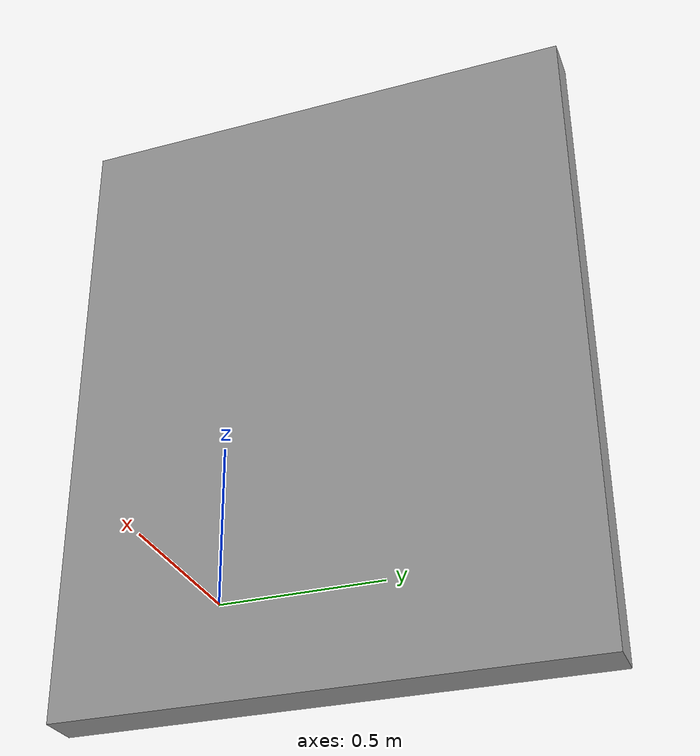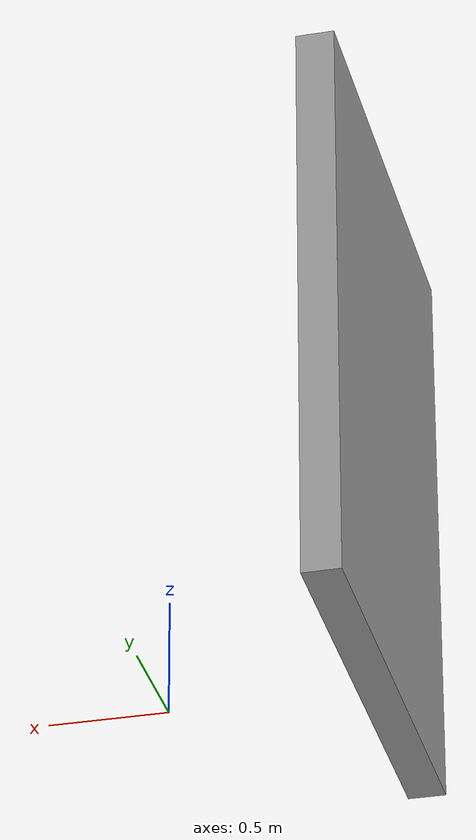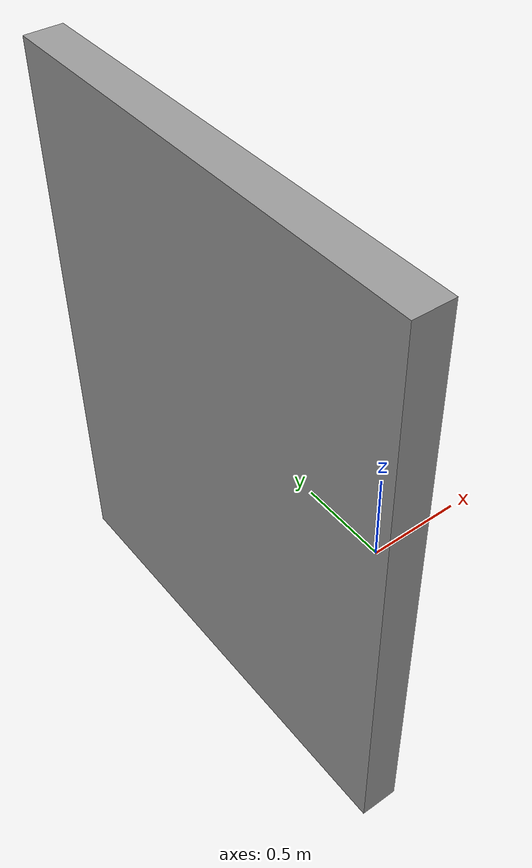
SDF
<?xml version='1.0'?>
<sdf version='1.5'>
  <model name='wall'>

    <link name='link'>
      <pose>-0.85 0 1.25 0 -0 0</pose>
      <inertial>
        <mass>1</mass>
        <inertia>
          <ixx>0.166667</ixx>
          <ixy>0</ixy>
          <ixz>0</ixz>
          <iyy>0.166667</iyy>
          <iyz>0</iyz>
          <izz>0.166667</izz>
        </inertia>
      </inertial>
      <gravity>1</gravity>
      <visual name='visual'>
        <geometry>
          <box>
            <size>0.16 2 2.5</size>
          </box>
        </geometry>
        <material>
          <script>
            <name>Gazebo/Grey</name>
            <uri>file://media/materials/scripts/gazebo.material</uri>
          </script>
        </material>
      </visual>
      <collision name='collision'>
        <laser_retro>0</laser_retro>
        <max_contacts>10</max_contacts>
        <pose frame=''>0 0 0 0 -0 0</pose>
        <geometry>
          <box>
            <size>0.16 2 2.5</size>
          </box>
        </geometry>
        <surface>
          <friction>
            <ode>
              <mu>0</mu>
              <mu2>0</mu2>
            </ode>
          </friction>
          <contact>
            <ode>
              <kp>20000</kp>
              <kd>1</kd>
            </ode>
          </contact>
        </surface>
      </collision>
    </link>
  </model>
</sdf>
